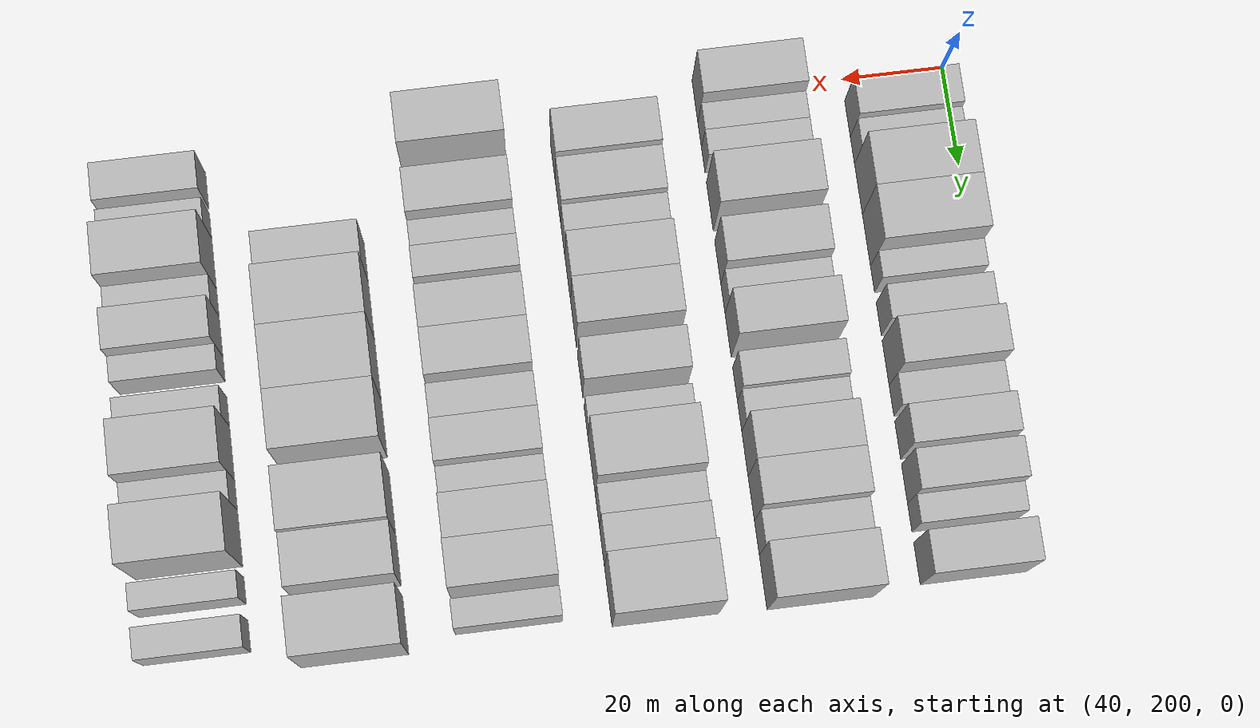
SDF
<sdf version="1.6">
 <world name="default">
  <model name="building_77">
   <static>1</static>
   <pose>50.0000 208.1772 0 0.000000 0.000000 0.000000</pose>
   <link name="link">
    <pose>0 0 7.50 0 0 0</pose>
    <collision name="collision"><geometry><box><size>20.0000 7.4826 15.0000</size></box></geometry></collision>
    <visual name="visual">
     <cast_shadows>0</cast_shadows>
     <geometry><box><size>20.0000 7.4826 15.0000</size></box></geometry>
     <material>
      <script>
       <uri>model://HANNAS_wall/materials/scripts</uri>
       <uri>model://HANNAS_wall/materials/textures</uri>
       <name>vrc/HANNAS_wall</name>
      </script>
     </material>
    </visual>
   </link>
  </model>
  <model name="building_78">
   <static>1</static>
   <pose>50.0000 214.6473 0 0.000000 0.000000 0.000000</pose>
   <link name="link">
    <pose>0 0 6.00 0 0 0</pose>
    <collision name="collision"><geometry><box><size>20.0000 5.4576 12.0000</size></box></geometry></collision>
    <visual name="visual">
     <cast_shadows>0</cast_shadows>
     <geometry><box><size>20.0000 5.4576 12.0000</size></box></geometry>
     <material>
      <script>
       <uri>model://HANNAS_wall/materials/scripts</uri>
       <uri>model://HANNAS_wall/materials/textures</uri>
       <name>vrc/HANNAS_wall</name>
      </script>
     </material>
    </visual>
   </link>
  </model>
  <model name="building_79">
   <static>1</static>
   <pose>50.0000 222.4874 0 0.000000 0.000000 0.000000</pose>
   <link name="link">
    <pose>0 0 10.50 0 0 0</pose>
    <collision name="collision"><geometry><box><size>20.0000 10.2226 21.0000</size></box></geometry></collision>
    <visual name="visual">
     <cast_shadows>0</cast_shadows>
     <geometry><box><size>20.0000 10.2226 21.0000</size></box></geometry>
     <material>
      <script>
       <uri>model://HANNAS_wall/materials/scripts</uri>
       <uri>model://HANNAS_wall/materials/textures</uri>
       <name>vrc/HANNAS_wall</name>
      </script>
     </material>
    </visual>
   </link>
  </model>
  <model name="building_80">
   <static>1</static>
   <pose>50.0000 232.7814 0 0.000000 0.000000 0.000000</pose>
   <link name="link">
    <pose>0 0 10.50 0 0 0</pose>
    <collision name="collision"><geometry><box><size>20.0000 10.3654 21.0000</size></box></geometry></collision>
    <visual name="visual">
     <cast_shadows>0</cast_shadows>
     <geometry><box><size>20.0000 10.3654 21.0000</size></box></geometry>
     <material>
      <script>
       <uri>model://HANNAS_wall/materials/scripts</uri>
       <uri>model://HANNAS_wall/materials/textures</uri>
       <name>vrc/HANNAS_wall</name>
      </script>
     </material>
    </visual>
   </link>
  </model>
  <model name="building_81">
   <static>1</static>
   <pose>50.0000 240.5755 0 0.000000 0.000000 0.000000</pose>
   <link name="link">
    <pose>0 0 6.00 0 0 0</pose>
    <collision name="collision"><geometry><box><size>20.0000 5.2228 12.0000</size></box></geometry></collision>
    <visual name="visual">
     <cast_shadows>0</cast_shadows>
     <geometry><box><size>20.0000 5.2228 12.0000</size></box></geometry>
     <material>
      <script>
       <uri>model://HANNAS_wall/materials/scripts</uri>
       <uri>model://HANNAS_wall/materials/textures</uri>
       <name>vrc/HANNAS_wall</name>
      </script>
     </material>
    </visual>
   </link>
  </model>
  <model name="building_82">
   <static>1</static>
   <pose>50.0000 248.4468 0 0.000000 0.000000 0.000000</pose>
   <link name="link">
    <pose>0 0 7.50 0 0 0</pose>
    <collision name="collision"><geometry><box><size>20.0000 6.5197 15.0000</size></box></geometry></collision>
    <visual name="visual">
     <cast_shadows>0</cast_shadows>
     <geometry><box><size>20.0000 6.5197 15.0000</size></box></geometry>
     <material>
      <script>
       <uri>model://HANNAS_wall/materials/scripts</uri>
       <uri>model://HANNAS_wall/materials/textures</uri>
       <name>vrc/HANNAS_wall</name>
      </script>
     </material>
    </visual>
   </link>
  </model>
  <model name="building_83">
   <static>1</static>
   <pose>50.0000 257.0895 0 0.000000 0.000000 0.000000</pose>
   <link name="link">
    <pose>0 0 10.50 0 0 0</pose>
    <collision name="collision"><geometry><box><size>20.0000 8.7658 21.0000</size></box></geometry></collision>
    <visual name="visual">
     <cast_shadows>0</cast_shadows>
     <geometry><box><size>20.0000 8.7658 21.0000</size></box></geometry>
     <material>
      <script>
       <uri>model://HANNAS_wall/materials/scripts</uri>
       <uri>model://HANNAS_wall/materials/textures</uri>
       <name>vrc/HANNAS_wall</name>
      </script>
     </material>
    </visual>
   </link>
  </model>
  <model name="building_84">
   <static>1</static>
   <pose>50.0000 264.4639 0 0.000000 0.000000 0.000000</pose>
   <link name="link">
    <pose>0 0 6.00 0 0 0</pose>
    <collision name="collision"><geometry><box><size>20.0000 5.9831 12.0000</size></box></geometry></collision>
    <visual name="visual">
     <cast_shadows>0</cast_shadows>
     <geometry><box><size>20.0000 5.9831 12.0000</size></box></geometry>
     <material>
      <script>
       <uri>model://HANNAS_wall/materials/scripts</uri>
       <uri>model://HANNAS_wall/materials/textures</uri>
       <name>vrc/HANNAS_wall</name>
      </script>
     </material>
    </visual>
   </link>
  </model>
  <model name="building_85">
   <static>1</static>
   <pose>50.0000 272.1037 0 0.000000 0.000000 0.000000</pose>
   <link name="link">
    <pose>0 0 9.00 0 0 0</pose>
    <collision name="collision"><geometry><box><size>20.0000 7.2965 18.0000</size></box></geometry></collision>
    <visual name="visual">
     <cast_shadows>0</cast_shadows>
     <geometry><box><size>20.0000 7.2965 18.0000</size></box></geometry>
     <material>
      <script>
       <uri>model://HANNAS_wall/materials/scripts</uri>
       <uri>model://HANNAS_wall/materials/textures</uri>
       <name>vrc/HANNAS_wall</name>
      </script>
     </material>
    </visual>
   </link>
  </model>
  <model name="building_86">
   <static>1</static>
   <pose>50.0000 280.5044 0 0.000000 0.000000 0.000000</pose>
   <link name="link">
    <pose>0 0 9.00 0 0 0</pose>
    <collision name="collision"><geometry><box><size>20.0000 7.5048 18.0000</size></box></geometry></collision>
    <visual name="visual">
     <cast_shadows>0</cast_shadows>
     <geometry><box><size>20.0000 7.5048 18.0000</size></box></geometry>
     <material>
      <script>
       <uri>model://HANNAS_wall/materials/scripts</uri>
       <uri>model://HANNAS_wall/materials/textures</uri>
       <name>vrc/HANNAS_wall</name>
      </script>
     </material>
    </visual>
   </link>
  </model>
  <model name="building_87">
   <static>1</static>
   <pose>50.0000 286.9579 0 0.000000 0.000000 0.000000</pose>
   <link name="link">
    <pose>0 0 6.00 0 0 0</pose>
    <collision name="collision"><geometry><box><size>20.0000 5.4024 12.0000</size></box></geometry></collision>
    <visual name="visual">
     <cast_shadows>0</cast_shadows>
     <geometry><box><size>20.0000 5.4024 12.0000</size></box></geometry>
     <material>
      <script>
       <uri>model://HANNAS_wall/materials/scripts</uri>
       <uri>model://HANNAS_wall/materials/textures</uri>
       <name>vrc/HANNAS_wall</name>
      </script>
     </material>
    </visual>
   </link>
  </model>
  <model name="building_88">
   <static>1</static>
   <pose>50.0000 295.6468 0 0.000000 0.000000 0.000000</pose>
   <link name="link">
    <pose>0 0 9.00 0 0 0</pose>
    <collision name="collision"><geometry><box><size>20.0000 7.9753 18.0000</size></box></geometry></collision>
    <visual name="visual">
     <cast_shadows>0</cast_shadows>
     <geometry><box><size>20.0000 7.9753 18.0000</size></box></geometry>
     <material>
      <script>
       <uri>model://HANNAS_wall/materials/scripts</uri>
       <uri>model://HANNAS_wall/materials/textures</uri>
       <name>vrc/HANNAS_wall</name>
      </script>
     </material>
    </visual>
   </link>
  </model>
  <model name="building_193">
   <static>1</static>
   <pose>79.0000 201.0172 0 0.000000 0.000000 0.000000</pose>
   <link name="link">
    <pose>0 0 9.00 0 0 0</pose>
    <collision name="collision"><geometry><box><size>20.0000 8.5170 18.0000</size></box></geometry></collision>
    <visual name="visual">
     <cast_shadows>0</cast_shadows>
     <geometry><box><size>20.0000 8.5170 18.0000</size></box></geometry>
     <material>
      <script>
       <uri>model://HANNAS_wall/materials/scripts</uri>
       <uri>model://HANNAS_wall/materials/textures</uri>
       <name>vrc/HANNAS_wall</name>
      </script>
     </material>
    </visual>
   </link>
  </model>
  <model name="building_194">
   <static>1</static>
   <pose>79.0000 207.9134 0 0.000000 0.000000 0.000000</pose>
   <link name="link">
    <pose>0 0 6.00 0 0 0</pose>
    <collision name="collision"><geometry><box><size>20.0000 5.2753 12.0000</size></box></geometry></collision>
    <visual name="visual">
     <cast_shadows>0</cast_shadows>
     <geometry><box><size>20.0000 5.2753 12.0000</size></box></geometry>
     <material>
      <script>
       <uri>model://HANNAS_wall/materials/scripts</uri>
       <uri>model://HANNAS_wall/materials/textures</uri>
       <name>vrc/HANNAS_wall</name>
      </script>
     </material>
    </visual>
   </link>
  </model>
  <model name="building_195">
   <static>1</static>
   <pose>79.0000 213.0684 0 0.000000 0.000000 0.000000</pose>
   <link name="link">
    <pose>0 0 6.00 0 0 0</pose>
    <collision name="collision"><geometry><box><size>20.0000 5.0347 12.0000</size></box></geometry></collision>
    <visual name="visual">
     <cast_shadows>0</cast_shadows>
     <geometry><box><size>20.0000 5.0347 12.0000</size></box></geometry>
     <material>
      <script>
       <uri>model://HANNAS_wall/materials/scripts</uri>
       <uri>model://HANNAS_wall/materials/textures</uri>
       <name>vrc/HANNAS_wall</name>
      </script>
     </material>
    </visual>
   </link>
  </model>
  <model name="building_196">
   <static>1</static>
   <pose>79.0000 222.4882 0 0.000000 0.000000 0.000000</pose>
   <link name="link">
    <pose>0 0 10.50 0 0 0</pose>
    <collision name="collision"><geometry><box><size>20.0000 9.8049 21.0000</size></box></geometry></collision>
    <visual name="visual">
     <cast_shadows>0</cast_shadows>
     <geometry><box><size>20.0000 9.8049 21.0000</size></box></geometry>
     <material>
      <script>
       <uri>model://HANNAS_wall/materials/scripts</uri>
       <uri>model://HANNAS_wall/materials/textures</uri>
       <name>vrc/HANNAS_wall</name>
      </script>
     </material>
    </visual>
   </link>
  </model>
  <model name="building_197">
   <static>1</static>
   <pose>79.0000 233.6876 0 0.000000 0.000000 0.000000</pose>
   <link name="link">
    <pose>0 0 9.00 0 0 0</pose>
    <collision name="collision"><geometry><box><size>20.0000 8.5938 18.0000</size></box></geometry></collision>
    <visual name="visual">
     <cast_shadows>0</cast_shadows>
     <geometry><box><size>20.0000 8.5938 18.0000</size></box></geometry>
     <material>
      <script>
       <uri>model://HANNAS_wall/materials/scripts</uri>
       <uri>model://HANNAS_wall/materials/textures</uri>
       <name>vrc/HANNAS_wall</name>
      </script>
     </material>
    </visual>
   </link>
  </model>
  <model name="building_198">
   <static>1</static>
   <pose>79.0000 240.9029 0 0.000000 0.000000 0.000000</pose>
   <link name="link">
    <pose>0 0 6.00 0 0 0</pose>
    <collision name="collision"><geometry><box><size>20.0000 5.8368 12.0000</size></box></geometry></collision>
    <visual name="visual">
     <cast_shadows>0</cast_shadows>
     <geometry><box><size>20.0000 5.8368 12.0000</size></box></geometry>
     <material>
      <script>
       <uri>model://HANNAS_wall/materials/scripts</uri>
       <uri>model://HANNAS_wall/materials/textures</uri>
       <name>vrc/HANNAS_wall</name>
      </script>
     </material>
    </visual>
   </link>
  </model>
  <model name="building_199">
   <static>1</static>
   <pose>79.0000 248.1060 0 0.000000 0.000000 0.000000</pose>
   <link name="link">
    <pose>0 0 10.50 0 0 0</pose>
    <collision name="collision"><geometry><box><size>20.0000 8.5694 21.0000</size></box></geometry></collision>
    <visual name="visual">
     <cast_shadows>0</cast_shadows>
     <geometry><box><size>20.0000 8.5694 21.0000</size></box></geometry>
     <material>
      <script>
       <uri>model://HANNAS_wall/materials/scripts</uri>
       <uri>model://HANNAS_wall/materials/textures</uri>
       <name>vrc/HANNAS_wall</name>
      </script>
     </material>
    </visual>
   </link>
  </model>
  <model name="building_200">
   <static>1</static>
   <pose>79.0000 257.6825 0 0.000000 0.000000 0.000000</pose>
   <link name="link">
    <pose>0 0 7.50 0 0 0</pose>
    <collision name="collision"><geometry><box><size>20.0000 6.5837 15.0000</size></box></geometry></collision>
    <visual name="visual">
     <cast_shadows>0</cast_shadows>
     <geometry><box><size>20.0000 6.5837 15.0000</size></box></geometry>
     <material>
      <script>
       <uri>model://HANNAS_wall/materials/scripts</uri>
       <uri>model://HANNAS_wall/materials/textures</uri>
       <name>vrc/HANNAS_wall</name>
      </script>
     </material>
    </visual>
   </link>
  </model>
  <model name="building_201">
   <static>1</static>
   <pose>79.0000 263.9155 0 0.000000 0.000000 0.000000</pose>
   <link name="link">
    <pose>0 0 6.00 0 0 0</pose>
    <collision name="collision"><geometry><box><size>20.0000 5.8823 12.0000</size></box></geometry></collision>
    <visual name="visual">
     <cast_shadows>0</cast_shadows>
     <geometry><box><size>20.0000 5.8823 12.0000</size></box></geometry>
     <material>
      <script>
       <uri>model://HANNAS_wall/materials/scripts</uri>
       <uri>model://HANNAS_wall/materials/textures</uri>
       <name>vrc/HANNAS_wall</name>
      </script>
     </material>
    </visual>
   </link>
  </model>
  <model name="building_202">
   <static>1</static>
   <pose>79.0000 271.1806 0 0.000000 0.000000 0.000000</pose>
   <link name="link">
    <pose>0 0 10.50 0 0 0</pose>
    <collision name="collision"><geometry><box><size>20.0000 8.6479 21.0000</size></box></geometry></collision>
    <visual name="visual">
     <cast_shadows>0</cast_shadows>
     <geometry><box><size>20.0000 8.6479 21.0000</size></box></geometry>
     <material>
      <script>
       <uri>model://HANNAS_wall/materials/scripts</uri>
       <uri>model://HANNAS_wall/materials/textures</uri>
       <name>vrc/HANNAS_wall</name>
      </script>
     </material>
    </visual>
   </link>
  </model>
  <model name="building_203">
   <static>1</static>
   <pose>79.0000 279.7601 0 0.000000 0.000000 0.000000</pose>
   <link name="link">
    <pose>0 0 10.50 0 0 0</pose>
    <collision name="collision"><geometry><box><size>20.0000 8.5110 21.0000</size></box></geometry></collision>
    <visual name="visual">
     <cast_shadows>0</cast_shadows>
     <geometry><box><size>20.0000 8.5110 21.0000</size></box></geometry>
     <material>
      <script>
       <uri>model://HANNAS_wall/materials/scripts</uri>
       <uri>model://HANNAS_wall/materials/textures</uri>
       <name>vrc/HANNAS_wall</name>
      </script>
     </material>
    </visual>
   </link>
  </model>
  <model name="building_204">
   <static>1</static>
   <pose>79.0000 287.2732 0 0.000000 0.000000 0.000000</pose>
   <link name="link">
    <pose>0 0 7.50 0 0 0</pose>
    <collision name="collision"><geometry><box><size>20.0000 6.5151 15.0000</size></box></geometry></collision>
    <visual name="visual">
     <cast_shadows>0</cast_shadows>
     <geometry><box><size>20.0000 6.5151 15.0000</size></box></geometry>
     <material>
      <script>
       <uri>model://HANNAS_wall/materials/scripts</uri>
       <uri>model://HANNAS_wall/materials/textures</uri>
       <name>vrc/HANNAS_wall</name>
      </script>
     </material>
    </visual>
   </link>
  </model>
  <model name="building_205">
   <static>1</static>
   <pose>79.0000 295.6540 0 0.000000 0.000000 0.000000</pose>
   <link name="link">
    <pose>0 0 10.50 0 0 0</pose>
    <collision name="collision"><geometry><box><size>20.0000 10.2466 21.0000</size></box></geometry></collision>
    <visual name="visual">
     <cast_shadows>0</cast_shadows>
     <geometry><box><size>20.0000 10.2466 21.0000</size></box></geometry>
     <material>
      <script>
       <uri>model://HANNAS_wall/materials/scripts</uri>
       <uri>model://HANNAS_wall/materials/textures</uri>
       <name>vrc/HANNAS_wall</name>
      </script>
     </material>
    </visual>
   </link>
  </model>
  <model name="building_305">
   <static>1</static>
   <pose>108.0000 210.0234 0 0.000000 0.000000 0.000000</pose>
   <link name="link">
    <pose>0 0 10.50 0 0 0</pose>
    <collision name="collision"><geometry><box><size>20.0000 8.4401 21.0000</size></box></geometry></collision>
    <visual name="visual">
     <cast_shadows>0</cast_shadows>
     <geometry><box><size>20.0000 8.4401 21.0000</size></box></geometry>
     <material>
      <script>
       <uri>model://HANNAS_wall/materials/scripts</uri>
       <uri>model://HANNAS_wall/materials/textures</uri>
       <name>vrc/HANNAS_wall</name>
      </script>
     </material>
    </visual>
   </link>
  </model>
  <model name="building_306">
   <static>1</static>
   <pose>108.0000 218.4593 0 0.000000 0.000000 0.000000</pose>
   <link name="link">
    <pose>0 0 9.00 0 0 0</pose>
    <collision name="collision"><geometry><box><size>20.0000 8.4318 18.0000</size></box></geometry></collision>
    <visual name="visual">
     <cast_shadows>0</cast_shadows>
     <geometry><box><size>20.0000 8.4318 18.0000</size></box></geometry>
     <material>
      <script>
       <uri>model://HANNAS_wall/materials/scripts</uri>
       <uri>model://HANNAS_wall/materials/textures</uri>
       <name>vrc/HANNAS_wall</name>
      </script>
     </material>
    </visual>
   </link>
  </model>
  <model name="building_307">
   <static>1</static>
   <pose>108.0000 226.0307 0 0.000000 0.000000 0.000000</pose>
   <link name="link">
    <pose>0 0 7.50 0 0 0</pose>
    <collision name="collision"><geometry><box><size>20.0000 6.7109 15.0000</size></box></geometry></collision>
    <visual name="visual">
     <cast_shadows>0</cast_shadows>
     <geometry><box><size>20.0000 6.7109 15.0000</size></box></geometry>
     <material>
      <script>
       <uri>model://HANNAS_wall/materials/scripts</uri>
       <uri>model://HANNAS_wall/materials/textures</uri>
       <name>vrc/HANNAS_wall</name>
      </script>
     </material>
    </visual>
   </link>
  </model>
  <model name="building_308">
   <static>1</static>
   <pose>108.0000 233.7107 0 0.000000 0.000000 0.000000</pose>
   <link name="link">
    <pose>0 0 10.50 0 0 0</pose>
    <collision name="collision"><geometry><box><size>20.0000 8.6491 21.0000</size></box></geometry></collision>
    <visual name="visual">
     <cast_shadows>0</cast_shadows>
     <geometry><box><size>20.0000 8.6491 21.0000</size></box></geometry>
     <material>
      <script>
       <uri>model://HANNAS_wall/materials/scripts</uri>
       <uri>model://HANNAS_wall/materials/textures</uri>
       <name>vrc/HANNAS_wall</name>
      </script>
     </material>
    </visual>
   </link>
  </model>
  <model name="building_309">
   <static>1</static>
   <pose>108.0000 242.4573 0 0.000000 0.000000 0.000000</pose>
   <link name="link">
    <pose>0 0 10.50 0 0 0</pose>
    <collision name="collision"><geometry><box><size>20.0000 8.8440 21.0000</size></box></geometry></collision>
    <visual name="visual">
     <cast_shadows>0</cast_shadows>
     <geometry><box><size>20.0000 8.8440 21.0000</size></box></geometry>
     <material>
      <script>
       <uri>model://HANNAS_wall/materials/scripts</uri>
       <uri>model://HANNAS_wall/materials/textures</uri>
       <name>vrc/HANNAS_wall</name>
      </script>
     </material>
    </visual>
   </link>
  </model>
  <model name="building_310">
   <static>1</static>
   <pose>108.0000 252.8198 0 0.000000 0.000000 0.000000</pose>
   <link name="link">
    <pose>0 0 9.00 0 0 0</pose>
    <collision name="collision"><geometry><box><size>20.0000 7.8811 18.0000</size></box></geometry></collision>
    <visual name="visual">
     <cast_shadows>0</cast_shadows>
     <geometry><box><size>20.0000 7.8811 18.0000</size></box></geometry>
     <material>
      <script>
       <uri>model://HANNAS_wall/materials/scripts</uri>
       <uri>model://HANNAS_wall/materials/textures</uri>
       <name>vrc/HANNAS_wall</name>
      </script>
     </material>
    </visual>
   </link>
  </model>
  <model name="building_311">
   <static>1</static>
   <pose>108.0000 261.7179 0 0.000000 0.000000 0.000000</pose>
   <link name="link">
    <pose>0 0 6.00 0 0 0</pose>
    <collision name="collision"><geometry><box><size>20.0000 5.9150 12.0000</size></box></geometry></collision>
    <visual name="visual">
     <cast_shadows>0</cast_shadows>
     <geometry><box><size>20.0000 5.9150 12.0000</size></box></geometry>
     <material>
      <script>
       <uri>model://HANNAS_wall/materials/scripts</uri>
       <uri>model://HANNAS_wall/materials/textures</uri>
       <name>vrc/HANNAS_wall</name>
      </script>
     </material>
    </visual>
   </link>
  </model>
  <model name="building_312">
   <static>1</static>
   <pose>108.0000 270.1622 0 0.000000 0.000000 0.000000</pose>
   <link name="link">
    <pose>0 0 12.00 0 0 0</pose>
    <collision name="collision"><geometry><box><size>20.0000 10.9737 24.0000</size></box></geometry></collision>
    <visual name="visual">
     <cast_shadows>0</cast_shadows>
     <geometry><box><size>20.0000 10.9737 24.0000</size></box></geometry>
     <material>
      <script>
       <uri>model://HANNAS_wall/materials/scripts</uri>
       <uri>model://HANNAS_wall/materials/textures</uri>
       <name>vrc/HANNAS_wall</name>
      </script>
     </material>
    </visual>
   </link>
  </model>
  <model name="building_313">
   <static>1</static>
   <pose>108.0000 278.6652 0 0.000000 0.000000 0.000000</pose>
   <link name="link">
    <pose>0 0 7.50 0 0 0</pose>
    <collision name="collision"><geometry><box><size>20.0000 6.0323 15.0000</size></box></geometry></collision>
    <visual name="visual">
     <cast_shadows>0</cast_shadows>
     <geometry><box><size>20.0000 6.0323 15.0000</size></box></geometry>
     <material>
      <script>
       <uri>model://HANNAS_wall/materials/scripts</uri>
       <uri>model://HANNAS_wall/materials/textures</uri>
       <name>vrc/HANNAS_wall</name>
      </script>
     </material>
    </visual>
   </link>
  </model>
  <model name="building_314">
   <static>1</static>
   <pose>108.0000 285.4722 0 0.000000 0.000000 0.000000</pose>
   <link name="link">
    <pose>0 0 9.00 0 0 0</pose>
    <collision name="collision"><geometry><box><size>20.0000 7.5818 18.0000</size></box></geometry></collision>
    <visual name="visual">
     <cast_shadows>0</cast_shadows>
     <geometry><box><size>20.0000 7.5818 18.0000</size></box></geometry>
     <material>
      <script>
       <uri>model://HANNAS_wall/materials/scripts</uri>
       <uri>model://HANNAS_wall/materials/textures</uri>
       <name>vrc/HANNAS_wall</name>
      </script>
     </material>
    </visual>
   </link>
  </model>
  <model name="building_315">
   <static>1</static>
   <pose>108.0000 294.8252 0 0.000000 0.000000 0.000000</pose>
   <link name="link">
    <pose>0 0 12.00 0 0 0</pose>
    <collision name="collision"><geometry><box><size>20.0000 11.1241 24.0000</size></box></geometry></collision>
    <visual name="visual">
     <cast_shadows>0</cast_shadows>
     <geometry><box><size>20.0000 11.1241 24.0000</size></box></geometry>
     <material>
      <script>
       <uri>model://HANNAS_wall/materials/scripts</uri>
       <uri>model://HANNAS_wall/materials/textures</uri>
       <name>vrc/HANNAS_wall</name>
      </script>
     </material>
    </visual>
   </link>
  </model>
  <model name="building_414">
   <static>1</static>
   <pose>137.0000 204.8670 0 0.000000 0.000000 0.000000</pose>
   <link name="link">
    <pose>0 0 12.00 0 0 0</pose>
    <collision name="collision"><geometry><box><size>20.0000 9.7126 24.0000</size></box></geometry></collision>
    <visual name="visual">
     <cast_shadows>0</cast_shadows>
     <geometry><box><size>20.0000 9.7126 24.0000</size></box></geometry>
     <material>
      <script>
       <uri>model://HANNAS_wall/materials/scripts</uri>
       <uri>model://HANNAS_wall/materials/textures</uri>
       <name>vrc/HANNAS_wall</name>
      </script>
     </material>
    </visual>
   </link>
  </model>
  <model name="building_415">
   <static>1</static>
   <pose>137.0000 217.0311 0 0.000000 0.000000 0.000000</pose>
   <link name="link">
    <pose>0 0 9.00 0 0 0</pose>
    <collision name="collision"><geometry><box><size>20.0000 8.6156 18.0000</size></box></geometry></collision>
    <visual name="visual">
     <cast_shadows>0</cast_shadows>
     <geometry><box><size>20.0000 8.6156 18.0000</size></box></geometry>
     <material>
      <script>
       <uri>model://HANNAS_wall/materials/scripts</uri>
       <uri>model://HANNAS_wall/materials/textures</uri>
       <name>vrc/HANNAS_wall</name>
      </script>
     </material>
    </visual>
   </link>
  </model>
  <model name="building_416">
   <static>1</static>
   <pose>137.0000 224.2102 0 0.000000 0.000000 0.000000</pose>
   <link name="link">
    <pose>0 0 6.00 0 0 0</pose>
    <collision name="collision"><geometry><box><size>20.0000 5.7427 12.0000</size></box></geometry></collision>
    <visual name="visual">
     <cast_shadows>0</cast_shadows>
     <geometry><box><size>20.0000 5.7427 12.0000</size></box></geometry>
     <material>
      <script>
       <uri>model://HANNAS_wall/materials/scripts</uri>
       <uri>model://HANNAS_wall/materials/textures</uri>
       <name>vrc/HANNAS_wall</name>
      </script>
     </material>
    </visual>
   </link>
  </model>
  <model name="building_417">
   <static>1</static>
   <pose>137.0000 230.1609 0 0.000000 0.000000 0.000000</pose>
   <link name="link">
    <pose>0 0 7.50 0 0 0</pose>
    <collision name="collision"><geometry><box><size>20.0000 6.1587 15.0000</size></box></geometry></collision>
    <visual name="visual">
     <cast_shadows>0</cast_shadows>
     <geometry><box><size>20.0000 6.1587 15.0000</size></box></geometry>
     <material>
      <script>
       <uri>model://HANNAS_wall/materials/scripts</uri>
       <uri>model://HANNAS_wall/materials/textures</uri>
       <name>vrc/HANNAS_wall</name>
      </script>
     </material>
    </visual>
   </link>
  </model>
  <model name="building_418">
   <static>1</static>
   <pose>137.0000 239.3438 0 0.000000 0.000000 0.000000</pose>
   <link name="link">
    <pose>0 0 9.00 0 0 0</pose>
    <collision name="collision"><geometry><box><size>20.0000 8.2071 18.0000</size></box></geometry></collision>
    <visual name="visual">
     <cast_shadows>0</cast_shadows>
     <geometry><box><size>20.0000 8.2071 18.0000</size></box></geometry>
     <material>
      <script>
       <uri>model://HANNAS_wall/materials/scripts</uri>
       <uri>model://HANNAS_wall/materials/textures</uri>
       <name>vrc/HANNAS_wall</name>
      </script>
     </material>
    </visual>
   </link>
  </model>
  <model name="building_419">
   <static>1</static>
   <pose>137.0000 247.9128 0 0.000000 0.000000 0.000000</pose>
   <link name="link">
    <pose>0 0 9.00 0 0 0</pose>
    <collision name="collision"><geometry><box><size>20.0000 8.9309 18.0000</size></box></geometry></collision>
    <visual name="visual">
     <cast_shadows>0</cast_shadows>
     <geometry><box><size>20.0000 8.9309 18.0000</size></box></geometry>
     <material>
      <script>
       <uri>model://HANNAS_wall/materials/scripts</uri>
       <uri>model://HANNAS_wall/materials/textures</uri>
       <name>vrc/HANNAS_wall</name>
      </script>
     </material>
    </visual>
   </link>
  </model>
  <model name="building_420">
   <static>1</static>
   <pose>137.0000 256.8989 0 0.000000 0.000000 0.000000</pose>
   <link name="link">
    <pose>0 0 7.50 0 0 0</pose>
    <collision name="collision"><geometry><box><size>20.0000 7.0414 15.0000</size></box></geometry></collision>
    <visual name="visual">
     <cast_shadows>0</cast_shadows>
     <geometry><box><size>20.0000 7.0414 15.0000</size></box></geometry>
     <material>
      <script>
       <uri>model://HANNAS_wall/materials/scripts</uri>
       <uri>model://HANNAS_wall/materials/textures</uri>
       <name>vrc/HANNAS_wall</name>
      </script>
     </material>
    </visual>
   </link>
  </model>
  <model name="building_421">
   <static>1</static>
   <pose>137.0000 264.4163 0 0.000000 0.000000 0.000000</pose>
   <link name="link">
    <pose>0 0 9.00 0 0 0</pose>
    <collision name="collision"><geometry><box><size>20.0000 7.9933 18.0000</size></box></geometry></collision>
    <visual name="visual">
     <cast_shadows>0</cast_shadows>
     <geometry><box><size>20.0000 7.9933 18.0000</size></box></geometry>
     <material>
      <script>
       <uri>model://HANNAS_wall/materials/scripts</uri>
       <uri>model://HANNAS_wall/materials/textures</uri>
       <name>vrc/HANNAS_wall</name>
      </script>
     </material>
    </visual>
   </link>
  </model>
  <model name="building_422">
   <static>1</static>
   <pose>137.0000 271.3362 0 0.000000 0.000000 0.000000</pose>
   <link name="link">
    <pose>0 0 6.00 0 0 0</pose>
    <collision name="collision"><geometry><box><size>20.0000 5.8465 12.0000</size></box></geometry></collision>
    <visual name="visual">
     <cast_shadows>0</cast_shadows>
     <geometry><box><size>20.0000 5.8465 12.0000</size></box></geometry>
     <material>
      <script>
       <uri>model://HANNAS_wall/materials/scripts</uri>
       <uri>model://HANNAS_wall/materials/textures</uri>
       <name>vrc/HANNAS_wall</name>
      </script>
     </material>
    </visual>
   </link>
  </model>
  <model name="building_423">
   <static>1</static>
   <pose>137.0000 278.5910 0 0.000000 0.000000 0.000000</pose>
   <link name="link">
    <pose>0 0 9.00 0 0 0</pose>
    <collision name="collision"><geometry><box><size>20.0000 8.6632 18.0000</size></box></geometry></collision>
    <visual name="visual">
     <cast_shadows>0</cast_shadows>
     <geometry><box><size>20.0000 8.6632 18.0000</size></box></geometry>
     <material>
      <script>
       <uri>model://HANNAS_wall/materials/scripts</uri>
       <uri>model://HANNAS_wall/materials/textures</uri>
       <name>vrc/HANNAS_wall</name>
      </script>
     </material>
    </visual>
   </link>
  </model>
  <model name="building_424">
   <static>1</static>
   <pose>137.0000 287.3897 0 0.000000 0.000000 0.000000</pose>
   <link name="link">
    <pose>0 0 10.50 0 0 0</pose>
    <collision name="collision"><geometry><box><size>20.0000 8.9342 21.0000</size></box></geometry></collision>
    <visual name="visual">
     <cast_shadows>0</cast_shadows>
     <geometry><box><size>20.0000 8.9342 21.0000</size></box></geometry>
     <material>
      <script>
       <uri>model://HANNAS_wall/materials/scripts</uri>
       <uri>model://HANNAS_wall/materials/textures</uri>
       <name>vrc/HANNAS_wall</name>
      </script>
     </material>
    </visual>
   </link>
  </model>
  <model name="building_425">
   <static>1</static>
   <pose>137.0000 295.5771 0 0.000000 0.000000 0.000000</pose>
   <link name="link">
    <pose>0 0 6.00 0 0 0</pose>
    <collision name="collision"><geometry><box><size>20.0000 5.4405 12.0000</size></box></geometry></collision>
    <visual name="visual">
     <cast_shadows>0</cast_shadows>
     <geometry><box><size>20.0000 5.4405 12.0000</size></box></geometry>
     <material>
      <script>
       <uri>model://HANNAS_wall/materials/scripts</uri>
       <uri>model://HANNAS_wall/materials/textures</uri>
       <name>vrc/HANNAS_wall</name>
      </script>
     </material>
    </visual>
   </link>
  </model>
  <model name="building_526">
   <static>1</static>
   <pose>166.0000 225.5147 0 0.000000 0.000000 0.000000</pose>
   <link name="link">
    <pose>0 0 9.00 0 0 0</pose>
    <collision name="collision"><geometry><box><size>20.0000 7.8492 18.0000</size></box></geometry></collision>
    <visual name="visual">
     <cast_shadows>0</cast_shadows>
     <geometry><box><size>20.0000 7.8492 18.0000</size></box></geometry>
     <material>
      <script>
       <uri>model://HANNAS_wall/materials/scripts</uri>
       <uri>model://HANNAS_wall/materials/textures</uri>
       <name>vrc/HANNAS_wall</name>
      </script>
     </material>
    </visual>
   </link>
  </model>
  <model name="building_527">
   <static>1</static>
   <pose>166.0000 235.0789 0 0.000000 0.000000 0.000000</pose>
   <link name="link">
    <pose>0 0 12.00 0 0 0</pose>
    <collision name="collision"><geometry><box><size>20.0000 11.2792 24.0000</size></box></geometry></collision>
    <visual name="visual">
     <cast_shadows>0</cast_shadows>
     <geometry><box><size>20.0000 11.2792 24.0000</size></box></geometry>
     <material>
      <script>
       <uri>model://HANNAS_wall/materials/scripts</uri>
       <uri>model://HANNAS_wall/materials/textures</uri>
       <name>vrc/HANNAS_wall</name>
      </script>
     </material>
    </visual>
   </link>
  </model>
  <model name="building_528">
   <static>1</static>
   <pose>166.0000 246.6849 0 0.000000 0.000000 0.000000</pose>
   <link name="link">
    <pose>0 0 12.00 0 0 0</pose>
    <collision name="collision"><geometry><box><size>20.0000 11.9328 24.0000</size></box></geometry></collision>
    <visual name="visual">
     <cast_shadows>0</cast_shadows>
     <geometry><box><size>20.0000 11.9328 24.0000</size></box></geometry>
     <material>
      <script>
       <uri>model://HANNAS_wall/materials/scripts</uri>
       <uri>model://HANNAS_wall/materials/textures</uri>
       <name>vrc/HANNAS_wall</name>
      </script>
     </material>
    </visual>
   </link>
  </model>
  <model name="building_529">
   <static>1</static>
   <pose>166.0000 258.1666 0 0.000000 0.000000 0.000000</pose>
   <link name="link">
    <pose>0 0 12.00 0 0 0</pose>
    <collision name="collision"><geometry><box><size>20.0000 11.0305 24.0000</size></box></geometry></collision>
    <visual name="visual">
     <cast_shadows>0</cast_shadows>
     <geometry><box><size>20.0000 11.0305 24.0000</size></box></geometry>
     <material>
      <script>
       <uri>model://HANNAS_wall/materials/scripts</uri>
       <uri>model://HANNAS_wall/materials/textures</uri>
       <name>vrc/HANNAS_wall</name>
      </script>
     </material>
    </visual>
   </link>
  </model>
  <model name="building_530">
   <static>1</static>
   <pose>166.0000 272.5171 0 0.000000 0.000000 0.000000</pose>
   <link name="link">
    <pose>0 0 12.00 0 0 0</pose>
    <collision name="collision"><geometry><box><size>20.0000 11.6705 24.0000</size></box></geometry></collision>
    <visual name="visual">
     <cast_shadows>0</cast_shadows>
     <geometry><box><size>20.0000 11.6705 24.0000</size></box></geometry>
     <material>
      <script>
       <uri>model://HANNAS_wall/materials/scripts</uri>
       <uri>model://HANNAS_wall/materials/textures</uri>
       <name>vrc/HANNAS_wall</name>
      </script>
     </material>
    </visual>
   </link>
  </model>
  <model name="building_531">
   <static>1</static>
   <pose>166.0000 283.2381 0 0.000000 0.000000 0.000000</pose>
   <link name="link">
    <pose>0 0 10.50 0 0 0</pose>
    <collision name="collision"><geometry><box><size>20.0000 9.7715 21.0000</size></box></geometry></collision>
    <visual name="visual">
     <cast_shadows>0</cast_shadows>
     <geometry><box><size>20.0000 9.7715 21.0000</size></box></geometry>
     <material>
      <script>
       <uri>model://HANNAS_wall/materials/scripts</uri>
       <uri>model://HANNAS_wall/materials/textures</uri>
       <name>vrc/HANNAS_wall</name>
      </script>
     </material>
    </visual>
   </link>
  </model>
  <model name="building_532">
   <static>1</static>
   <pose>166.0000 295.5004 0 0.000000 0.000000 0.000000</pose>
   <link name="link">
    <pose>0 0 12.00 0 0 0</pose>
    <collision name="collision"><geometry><box><size>20.0000 10.7530 24.0000</size></box></geometry></collision>
    <visual name="visual">
     <cast_shadows>0</cast_shadows>
     <geometry><box><size>20.0000 10.7530 24.0000</size></box></geometry>
     <material>
      <script>
       <uri>model://HANNAS_wall/materials/scripts</uri>
       <uri>model://HANNAS_wall/materials/textures</uri>
       <name>vrc/HANNAS_wall</name>
      </script>
     </material>
    </visual>
   </link>
  </model>
  <model name="building_638">
   <static>1</static>
   <pose>195.0000 207.4893 0 0.000000 0.000000 0.000000</pose>
   <link name="link">
    <pose>0 0 7.50 0 0 0</pose>
    <collision name="collision"><geometry><box><size>20.0000 7.2890 15.0000</size></box></geometry></collision>
    <visual name="visual">
     <cast_shadows>0</cast_shadows>
     <geometry><box><size>20.0000 7.2890 15.0000</size></box></geometry>
     <material>
      <script>
       <uri>model://HANNAS_wall/materials/scripts</uri>
       <uri>model://HANNAS_wall/materials/textures</uri>
       <name>vrc/HANNAS_wall</name>
      </script>
     </material>
    </visual>
   </link>
  </model>
  <model name="building_639">
   <static>1</static>
   <pose>195.0000 214.5887 0 0.000000 0.000000 0.000000</pose>
   <link name="link">
    <pose>0 0 6.00 0 0 0</pose>
    <collision name="collision"><geometry><box><size>20.0000 4.9098 12.0000</size></box></geometry></collision>
    <visual name="visual">
     <cast_shadows>0</cast_shadows>
     <geometry><box><size>20.0000 4.9098 12.0000</size></box></geometry>
     <material>
      <script>
       <uri>model://HANNAS_wall/materials/scripts</uri>
       <uri>model://HANNAS_wall/materials/textures</uri>
       <name>vrc/HANNAS_wall</name>
      </script>
     </material>
    </visual>
   </link>
  </model>
  <model name="building_640">
   <static>1</static>
   <pose>195.0000 222.0893 0 0.000000 0.000000 0.000000</pose>
   <link name="link">
    <pose>0 0 10.50 0 0 0</pose>
    <collision name="collision"><geometry><box><size>20.0000 10.0914 21.0000</size></box></geometry></collision>
    <visual name="visual">
     <cast_shadows>0</cast_shadows>
     <geometry><box><size>20.0000 10.0914 21.0000</size></box></geometry>
     <material>
      <script>
       <uri>model://HANNAS_wall/materials/scripts</uri>
       <uri>model://HANNAS_wall/materials/textures</uri>
       <name>vrc/HANNAS_wall</name>
      </script>
     </material>
    </visual>
   </link>
  </model>
  <model name="building_641">
   <static>1</static>
   <pose>195.0000 229.8774 0 0.000000 0.000000 0.000000</pose>
   <link name="link">
    <pose>0 0 6.00 0 0 0</pose>
    <collision name="collision"><geometry><box><size>20.0000 5.4848 12.0000</size></box></geometry></collision>
    <visual name="visual">
     <cast_shadows>0</cast_shadows>
     <geometry><box><size>20.0000 5.4848 12.0000</size></box></geometry>
     <material>
      <script>
       <uri>model://HANNAS_wall/materials/scripts</uri>
       <uri>model://HANNAS_wall/materials/textures</uri>
       <name>vrc/HANNAS_wall</name>
      </script>
     </material>
    </visual>
   </link>
  </model>
  <model name="building_642">
   <static>1</static>
   <pose>195.0000 236.5576 0 0.000000 0.000000 0.000000</pose>
   <link name="link">
    <pose>0 0 9.00 0 0 0</pose>
    <collision name="collision"><geometry><box><size>20.0000 7.8756 18.0000</size></box></geometry></collision>
    <visual name="visual">
     <cast_shadows>0</cast_shadows>
     <geometry><box><size>20.0000 7.8756 18.0000</size></box></geometry>
     <material>
      <script>
       <uri>model://HANNAS_wall/materials/scripts</uri>
       <uri>model://HANNAS_wall/materials/textures</uri>
       <name>vrc/HANNAS_wall</name>
      </script>
     </material>
    </visual>
   </link>
  </model>
  <model name="building_643">
   <static>1</static>
   <pose>195.0000 242.9504 0 0.000000 0.000000 0.000000</pose>
   <link name="link">
    <pose>0 0 6.00 0 0 0</pose>
    <collision name="collision"><geometry><box><size>20.0000 4.9100 12.0000</size></box></geometry></collision>
    <visual name="visual">
     <cast_shadows>0</cast_shadows>
     <geometry><box><size>20.0000 4.9100 12.0000</size></box></geometry>
     <material>
      <script>
       <uri>model://HANNAS_wall/materials/scripts</uri>
       <uri>model://HANNAS_wall/materials/textures</uri>
       <name>vrc/HANNAS_wall</name>
      </script>
     </material>
    </visual>
   </link>
  </model>
  <model name="building_644">
   <static>1</static>
   <pose>195.0000 251.2343 0 0.000000 0.000000 0.000000</pose>
   <link name="link">
    <pose>0 0 6.00 0 0 0</pose>
    <collision name="collision"><geometry><box><size>20.0000 5.6577 12.0000</size></box></geometry></collision>
    <visual name="visual">
     <cast_shadows>0</cast_shadows>
     <geometry><box><size>20.0000 5.6577 12.0000</size></box></geometry>
     <material>
      <script>
       <uri>model://HANNAS_wall/materials/scripts</uri>
       <uri>model://HANNAS_wall/materials/textures</uri>
       <name>vrc/HANNAS_wall</name>
      </script>
     </material>
    </visual>
   </link>
  </model>
  <model name="building_645">
   <static>1</static>
   <pose>195.0000 259.2258 0 0.000000 0.000000 0.000000</pose>
   <link name="link">
    <pose>0 0 10.50 0 0 0</pose>
    <collision name="collision"><geometry><box><size>20.0000 10.3252 21.0000</size></box></geometry></collision>
    <visual name="visual">
     <cast_shadows>0</cast_shadows>
     <geometry><box><size>20.0000 10.3252 21.0000</size></box></geometry>
     <material>
      <script>
       <uri>model://HANNAS_wall/materials/scripts</uri>
       <uri>model://HANNAS_wall/materials/textures</uri>
       <name>vrc/HANNAS_wall</name>
      </script>
     </material>
    </visual>
   </link>
  </model>
  <model name="building_646">
   <static>1</static>
   <pose>195.0000 267.2956 0 0.000000 0.000000 0.000000</pose>
   <link name="link">
    <pose>0 0 6.00 0 0 0</pose>
    <collision name="collision"><geometry><box><size>20.0000 5.8143 12.0000</size></box></geometry></collision>
    <visual name="visual">
     <cast_shadows>0</cast_shadows>
     <geometry><box><size>20.0000 5.8143 12.0000</size></box></geometry>
     <material>
      <script>
       <uri>model://HANNAS_wall/materials/scripts</uri>
       <uri>model://HANNAS_wall/materials/textures</uri>
       <name>vrc/HANNAS_wall</name>
      </script>
     </material>
    </visual>
   </link>
  </model>
  <model name="building_647">
   <static>1</static>
   <pose>195.0000 275.5400 0 0.000000 0.000000 0.000000</pose>
   <link name="link">
    <pose>0 0 12.00 0 0 0</pose>
    <collision name="collision"><geometry><box><size>20.0000 10.6745 24.0000</size></box></geometry></collision>
    <visual name="visual">
     <cast_shadows>0</cast_shadows>
     <geometry><box><size>20.0000 10.6745 24.0000</size></box></geometry>
     <material>
      <script>
       <uri>model://HANNAS_wall/materials/scripts</uri>
       <uri>model://HANNAS_wall/materials/textures</uri>
       <name>vrc/HANNAS_wall</name>
      </script>
     </material>
    </visual>
   </link>
  </model>
  <model name="building_648">
   <static>1</static>
   <pose>195.0000 285.4186 0 0.000000 0.000000 0.000000</pose>
   <link name="link">
    <pose>0 0 6.00 0 0 0</pose>
    <collision name="collision"><geometry><box><size>20.0000 5.0828 12.0000</size></box></geometry></collision>
    <visual name="visual">
     <cast_shadows>0</cast_shadows>
     <geometry><box><size>20.0000 5.0828 12.0000</size></box></geometry>
     <material>
      <script>
       <uri>model://HANNAS_wall/materials/scripts</uri>
       <uri>model://HANNAS_wall/materials/textures</uri>
       <name>vrc/HANNAS_wall</name>
      </script>
     </material>
    </visual>
   </link>
  </model>
  <model name="building_649">
   <static>1</static>
   <pose>195.0000 293.9437 0 0.000000 0.000000 0.000000</pose>
   <link name="link">
    <pose>0 0 6.00 0 0 0</pose>
    <collision name="collision"><geometry><box><size>20.0000 5.9673 12.0000</size></box></geometry></collision>
    <visual name="visual">
     <cast_shadows>0</cast_shadows>
     <geometry><box><size>20.0000 5.9673 12.0000</size></box></geometry>
     <material>
      <script>
       <uri>model://HANNAS_wall/materials/scripts</uri>
       <uri>model://HANNAS_wall/materials/textures</uri>
       <name>vrc/HANNAS_wall</name>
      </script>
     </material>
    </visual>
   </link>
  </model>
 </world>
</sdf>
